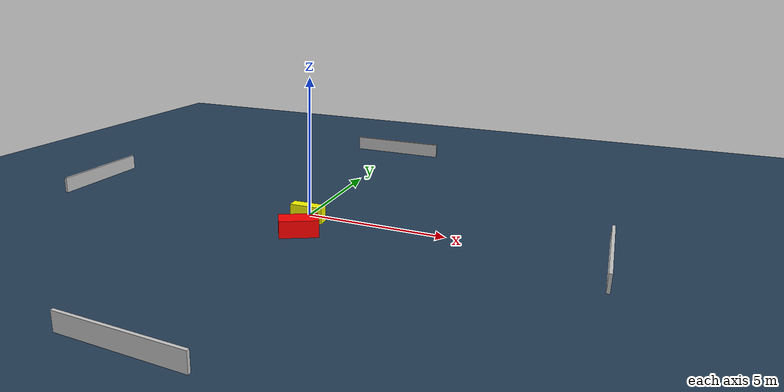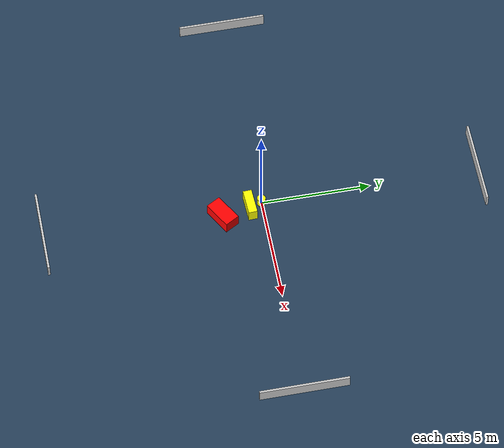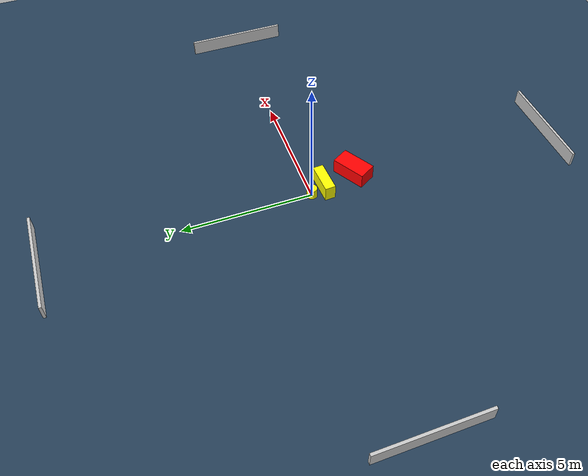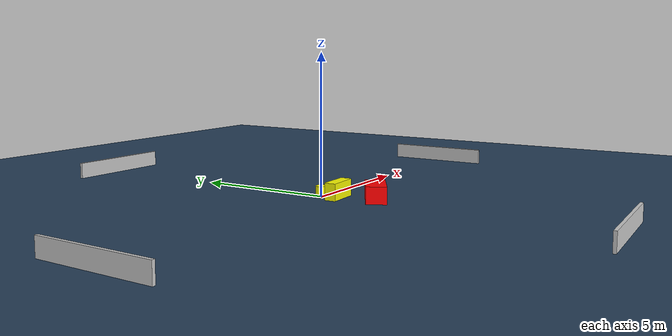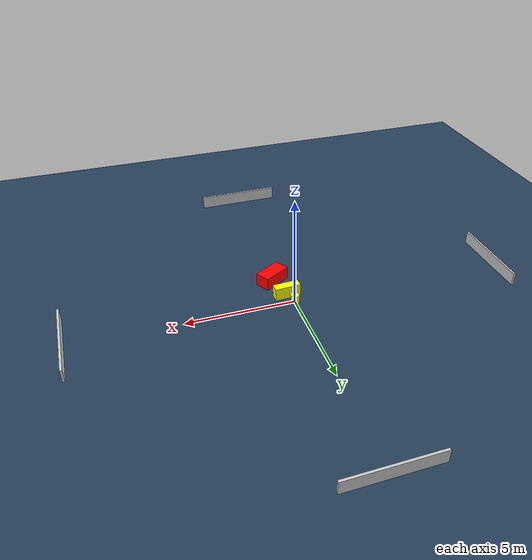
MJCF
<?xml version="1.0" ?>
<mujoco model="generated_environment">
  <option timestep="0.01" integrator="RK4" cone="elliptic"/>
  <default>
    <geom density="1"/>
  </default>
  <asset>
    <texture builtin="gradient" height="3072" name="skybox" rgb1="0.3 0.5 0.7" rgb2="0 0 0" type="skybox" width="512"/>
    <texture builtin="checker" height="300" name="groundplane" rgb1="0.2 0.3 0.4" rgb2="0.1 0.2 0.3" type="2d" width="300"/>
    <material name="groundplane" reflectance="0.2" texrepeat="5 5" texture="groundplane"/>
  </asset>
  <worldbody>
    <light dir="0 0 -1" directional="true" pos="0 0 1.5"/>
    <geom condim="3" friction="0.5 0.005 0.001" material="groundplane" name="floor" pos="0 0 0" size="0 0 0.05" type="plane"/>
    <body name="walls">
      <geom name="wall_1" condim="4" pos="-10.0 0.0 0.3" rgba="0.800000011920929 0.800000011920929 0.800000011920929 1.0" size="0.05 2.0 0.3" type="box"/>
      <geom name="wall_2" condim="4" pos="10.0 0.0 0.3" rgba="0.800000011920929 0.800000011920929 0.800000011920929 1.0" size="0.05 2.0 0.3" type="box"/>
      <geom name="wall_3" condim="4" pos="0.0 -10.0 0.3" rgba="0.800000011920929 0.800000011920929 0.800000011920929 1.0" size="2.0 0.05 0.3" type="box"/>
      <geom name="wall_4" condim="4" pos="0.0 10.0 0.3" rgba="0.800000011920929 0.800000011920929 0.800000011920929 1.0" size="2.0 0.05 0.3" type="box"/>
    </body>
    <body name="robot">
      <joint name="joint_x" type="slide" pos="0 0 0" axis="1 0 0"/>
      <joint name="joint_y" type="slide" pos="0 0 0" axis="0 1 0"/>
      <geom name="robot" type="cylinder" pos="0.0 0.0 0.2" size="0.2 0.2 0.0" mass="5.0" friction="1.0 0.005 0.0001" condim="4" rgba="1.0 1.0 0.0 1.0"/>
    </body>
    <body name="obstacle_1_movable">
      <geom name="obstacle_1_movable" condim="4" pos="0.19812512473366348 -0.5559814123880793 0.3" euler="0 0 182.54734794214787" friction="0.0 0.005 0.001" rgba="1.0 1.0 0.0 1.0" size="0.5957274500846543 0.20267670134389146 0.3" type="box" mass="0.1"/>
      <joint type="free"/>
    </body>
    <body name="obstacle_2_static">
      <geom name="obstacle_2_static" condim="4" pos="0.4856330635945776 -1.8643682789774112 0.3" euler="0 0 299.96702799129923" friction="0.0 0.005 0.001" rgba="1.0 0.0 0.0 1.0" size="0.35463090963242383 0.6728573877817903 0.3" type="box"/>
    </body>
  </worldbody>
  <actuator>
    <motor name="actuator_x" joint="joint_x" gear="1" ctrlrange="-1 1"/>
    <motor name="actuator_y" joint="joint_y" gear="1" ctrlrange="-1 1"/>
  </actuator>
</mujoco>
